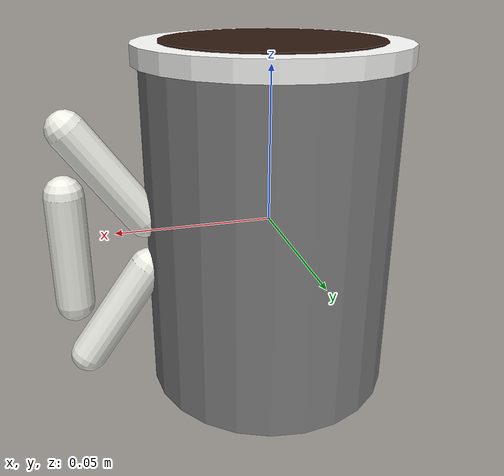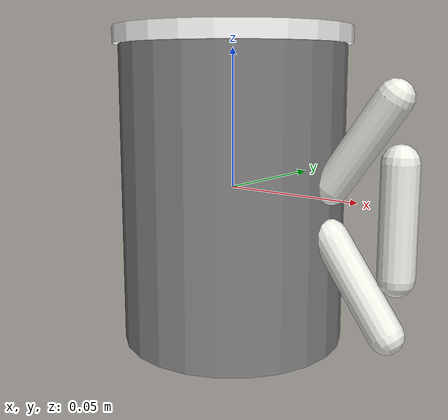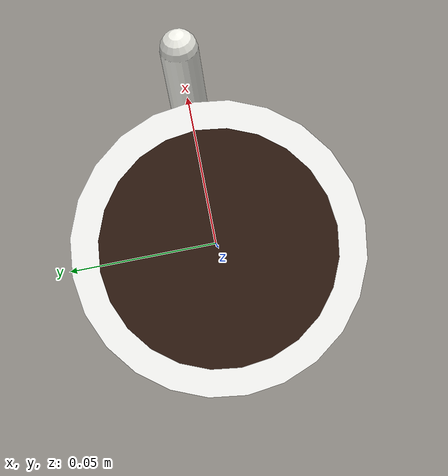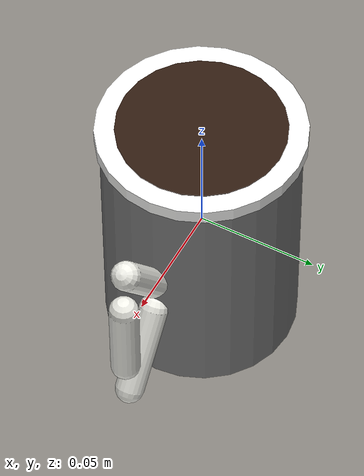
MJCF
<mujoco model="vla82_vla82_036">
  <compiler angle="radian"/>
  <asset>
    <texture name="source_texture" type="2d" file="source_texture.png"/>
    <material name="source_material" texture="source_texture" rgba="1 1 1 1"/>
  </asset>
  <default>
    <default class="visual"><geom contype="0" conaffinity="0" group="1" mass="0"/></default>
    <default class="collision"><geom contype="1" conaffinity="1" group="0" density="300" friction="0.4 0.004 0.0001" solref="0.02 1" solimp="0.9 0.95 0.001"/></default>
    <default class="region"><geom contype="0" conaffinity="0" group="1" rgba="0 1 0 0" mass="0"/></default>
  </default>
  <worldbody><body><body name="object">
    <geom name="mug_body" class="visual" type="cylinder" pos="0 0 -0.002" size="0.039 0.053" rgba="0.94 0.94 0.91 1"/>
    <geom name="mug_rim" class="visual" type="cylinder" pos="0 0 0.054" size="0.042 0.003" rgba="0.99 0.99 0.98 1"/>
    <geom name="mug_inner" class="visual" type="cylinder" pos="0 0 0.056" size="0.034 0.0015" rgba="0.18 0.10 0.06 1"/>
    <geom name="mug_handle_0" class="visual" type="capsule" pos="0.051 0 0.019" size="0.006 0.018" euler="0 0.62 0" rgba="0.94 0.94 0.91 1"/>
    <geom name="mug_handle_1" class="visual" type="capsule" pos="0.064 0 -0.004" size="0.006 0.018" rgba="0.94 0.94 0.91 1"/>
    <geom name="mug_handle_2" class="visual" type="capsule" pos="0.051 0 -0.027" size="0.006 0.018" euler="0 -0.62 0" rgba="0.94 0.94 0.91 1"/>
    <geom name="legacy_visual_mass_carrier" class="visual" type="cylinder" size="0.040000 0.055000" mass="0.552920307" rgba="0 0 0 0"/>
    <geom name="collision" class="collision" type="cylinder" size="0.040000 0.055000"/>
    <geom name="reg_bbox" class="region" type="box" pos="0 0 0" size="0.040000 0.040000 0.055000"/>
  </body></body></worldbody>
  <actuator/>
</mujoco>
